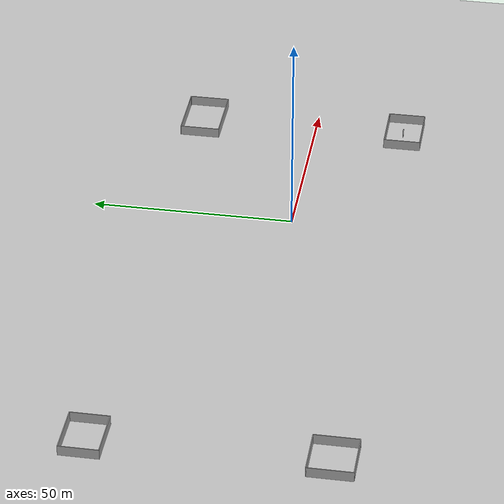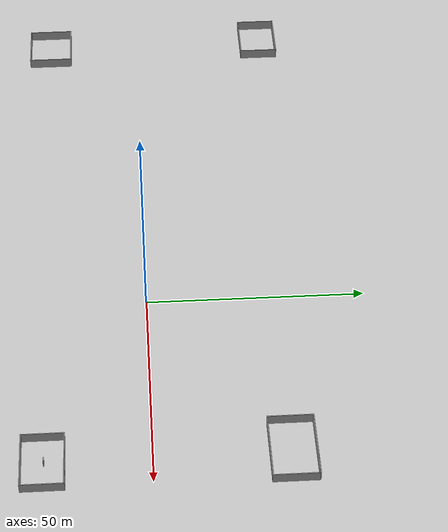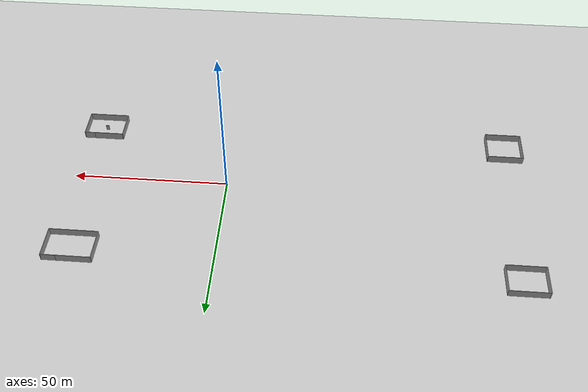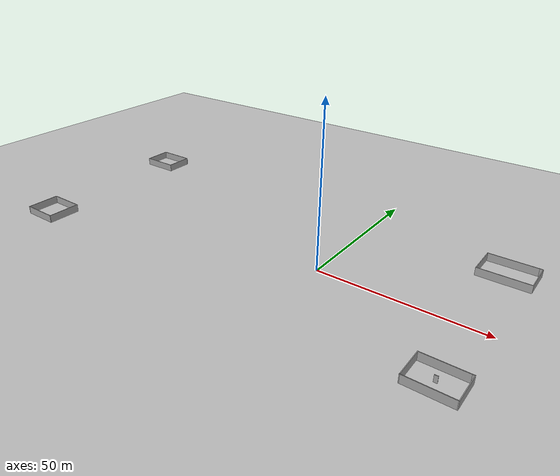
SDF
<sdf version="1.4">
 <world name="default">
  <light name="sun" type="directional">
   <pose>0 0 10 0 -0 0</pose>
   <diffuse>0.8 0.8 0.8 1</diffuse>
   <specular>0.2 0.2 0.2 1</specular>
   <attenuation>
    <range>1000</range>
    <constant>0.9</constant>
    <linear>0.01</linear>
    <quadratic>0.001</quadratic>
   </attenuation>
   <direction>-0.5 0.1 -0.9</direction>
  </light>
  <model name="ground_plane">
   <static>1</static>
   <link name="link">
    <collision name="collision">
     <geometry><plane><normal>0 0 1</normal><size>100 100</size></plane></geometry>
     <surface><friction><ode><mu>100</mu><mu2>50</mu2></ode></friction></surface>
    </collision>
    <visual name="visual">
     <cast_shadows>0</cast_shadows>
     <geometry><plane><normal>0 0 1</normal><size>100 100</size></plane></geometry>
     <material>
      <script><uri>file://media/materials/scripts/gazebo.material</uri><name>Gazebo/Grey</name></script>
     </material>
    </visual>
    <velocity_decay><linear>0</linear><angular>0</angular></velocity_decay>
   </link>
  </model>
  <physics type="ode">
   <max_step_size>0.001</max_step_size>
   <real_time_factor>1</real_time_factor>
   <real_time_update_rate>1000</real_time_update_rate>
   <gravity>0 0 -9.8</gravity>
  </physics>
  <scene><ambient>0.4 0.4 0.4 1</ambient><background>0.7 0.7 0.7 1</background><shadows>1</shadows></scene>
  <spherical_coordinates>
   <surface_model>EARTH_WGS84</surface_model>
   <latitude_deg>0</latitude_deg>
   <longitude_deg>0</longitude_deg>
   <elevation>0</elevation>
   <heading_deg>0</heading_deg>
  </spherical_coordinates>
  <model name="ofshore_1m">
   <link name="Door_0">
    <collision name="Door_0_Collision">
     <geometry><box><size>1 0.2 2</size></box></geometry>
     <pose>0 0 1 0 -0 0</pose>
    </collision>
    <visual name="Door_0_Visual">
     <pose>0 0 1 0 -0 0</pose>
     <geometry><box><size>1 0.2 2</size></box></geometry>
     <material>
      <script><uri>file://media/materials/scripts/gazebo.material</uri><name>Gazebo/Grey</name></script>
     </material>
    </visual>
    <velocity_decay><linear>0</linear><angular>0</angular></velocity_decay>
    <pose>44.41 -22.9157 0 0 -0 0</pose>
   </link>
   <link name="Wall_0">
    <collision name="Wall_0_Collision">
     <geometry><box><size>14.4318 0.2 2.5</size></box></geometry>
     <pose>0 0 1.25 0 -0 0</pose>
    </collision>
    <visual name="Wall_0_Visual">
     <pose>0 0 1.25 0 -0 0</pose>
     <geometry><box><size>14.4318 0.2 2.5</size></box></geometry>
     <material>
      <script><uri>file://media/materials/scripts/gazebo.material</uri><name>Gazebo/Grey</name></script>
     </material>
    </visual>
    <velocity_decay><linear>0</linear><angular>0</angular></velocity_decay>
    <pose>43.3461 34.7105 0 0 -0 3.14159</pose>
   </link>
   <link name="Wall_1">
    <collision name="Wall_1_Collision">
     <geometry><box><size>10.1622 0.2 2.5</size></box></geometry>
     <pose>0 0 1.25 0 -0 0</pose>
    </collision>
    <visual name="Wall_1_Visual">
     <pose>0 0 1.25 0 -0 0</pose>
     <geometry><box><size>10.1622 0.2 2.5</size></box></geometry>
     <material>
      <script><uri>file://media/materials/scripts/gazebo.material</uri><name>Gazebo/Grey</name></script>
     </material>
    </visual>
    <velocity_decay><linear>0</linear><angular>0</angular></velocity_decay>
    <pose>36.2302 29.7294 0 0 0 -1.5708</pose>
   </link>
   <link name="Wall_10">
    <collision name="Wall_10_Collision">
     <geometry><box><size>3.47331 0.2 2.5</size></box></geometry>
     <pose>0 0 1.25 0 -0 0</pose>
    </collision>
    <visual name="Wall_10_Visual">
     <pose>0 0 1.25 0 -0 0</pose>
     <geometry><box><size>3.47331 0.2 2.5</size></box></geometry>
     <material>
      <script><uri>file://media/materials/scripts/gazebo.material</uri><name>Gazebo/Grey</name></script>
     </material>
    </visual>
    <velocity_decay><linear>0</linear><angular>0</angular></velocity_decay>
    <pose>49.4738 -18.5359 0 0 -0 3.14159</pose>
   </link>
   <link name="Wall_12">
    <collision name="Wall_12_Collision">
     <geometry><box><size>12.297 0.2 2.5</size></box></geometry>
     <pose>0 0 1.25 0 -0 0</pose>
    </collision>
    <visual name="Wall_12_Visual">
     <pose>0 0 1.25 0 -0 0</pose>
     <geometry><box><size>12.297 0.2 2.5</size></box></geometry>
     <material>
      <script><uri>file://media/materials/scripts/gazebo.material</uri><name>Gazebo/Grey</name></script>
     </material>
    </visual>
    <velocity_decay><linear>0</linear><angular>0</angular></velocity_decay>
    <pose>-92.2746 37.2527 0 0 -0 3.14159</pose>
   </link>
   <link name="Wall_13">
    <collision name="Wall_13_Collision">
     <geometry><box><size>9.45065 0.2 2.5</size></box></geometry>
     <pose>0 0 1.25 0 -0 0</pose>
    </collision>
    <visual name="Wall_13_Visual">
     <pose>0 0 1.25 0 -0 0</pose>
     <geometry><box><size>9.45065 0.2 2.5</size></box></geometry>
     <material>
      <script><uri>file://media/materials/scripts/gazebo.material</uri><name>Gazebo/Grey</name></script>
     </material>
    </visual>
    <velocity_decay><linear>0</linear><angular>0</angular></velocity_decay>
    <pose>-98.3232 32.6274 0 0 0 -1.5708</pose>
   </link>
   <link name="Wall_14">
    <collision name="Wall_14_Collision">
     <geometry><box><size>12.297 0.2 2.5</size></box></geometry>
     <pose>0 0 1.25 0 -0 0</pose>
    </collision>
    <visual name="Wall_14_Visual">
     <pose>0 0 1.25 0 -0 0</pose>
     <geometry><box><size>12.297 0.2 2.5</size></box></geometry>
     <material>
      <script><uri>file://media/materials/scripts/gazebo.material</uri><name>Gazebo/Grey</name></script>
     </material>
    </visual>
    <velocity_decay><linear>0</linear><angular>0</angular></velocity_decay>
    <pose>-92.2746 28.002 0 0 -0 0</pose>
   </link>
   <link name="Wall_15">
    <collision name="Wall_15_Collision">
     <geometry><box><size>9.30833 0.2 2.5</size></box></geometry>
     <pose>0 0 1.25 0 -0 0</pose>
    </collision>
    <visual name="Wall_15_Visual">
     <pose>0 0 1.25 0 -0 0</pose>
     <geometry><box><size>9.30833 0.2 2.5</size></box></geometry>
     <material>
      <script><uri>file://media/materials/scripts/gazebo.material</uri><name>Gazebo/Grey</name></script>
     </material>
    </visual>
    <velocity_decay><linear>0</linear><angular>0</angular></velocity_decay>
    <pose>-86.2261 32.5562 0 0 -0 1.5708</pose>
   </link>
   <link name="Wall_17">
    <collision name="Wall_17_Collision">
     <geometry><box><size>11.5854 0.2 2.5</size></box></geometry>
     <pose>0 0 1.25 0 -0 0</pose>
    </collision>
    <visual name="Wall_17_Visual">
     <pose>0 0 1.25 0 -0 0</pose>
     <geometry><box><size>11.5854 0.2 2.5</size></box></geometry>
     <material>
      <script><uri>file://media/materials/scripts/gazebo.material</uri><name>Gazebo/Grey</name></script>
     </material>
    </visual>
    <velocity_decay><linear>0</linear><angular>0</angular></velocity_decay>
    <pose>-91.2073 -17.255 0 0 -0 3.14159</pose>
   </link>
   <link name="Wall_18">
    <collision name="Wall_18_Collision">
     <geometry><box><size>10.7315 0.2 2.5</size></box></geometry>
     <pose>0 0 1.25 0 -0 0</pose>
    </collision>
    <visual name="Wall_18_Visual">
     <pose>0 0 1.25 0 -0 0</pose>
     <geometry><box><size>10.7315 0.2 2.5</size></box></geometry>
     <material>
      <script><uri>file://media/materials/scripts/gazebo.material</uri><name>Gazebo/Grey</name></script>
     </material>
    </visual>
    <velocity_decay><linear>0</linear><angular>0</angular></velocity_decay>
    <pose>-96.9 -22.5208 0 0 0 -1.5708</pose>
   </link>
   <link name="Wall_19">
    <collision name="Wall_19_Collision">
     <geometry><box><size>11.7277 0.2 2.5</size></box></geometry>
     <pose>0 0 1.25 0 -0 0</pose>
    </collision>
    <visual name="Wall_19_Visual">
     <pose>0 0 1.25 0 -0 0</pose>
     <geometry><box><size>11.7277 0.2 2.5</size></box></geometry>
     <material>
      <script><uri>file://media/materials/scripts/gazebo.material</uri><name>Gazebo/Grey</name></script>
     </material>
    </visual>
    <velocity_decay><linear>0</linear><angular>0</angular></velocity_decay>
    <pose>-91.1361 -27.7865 0 0 -0 0</pose>
   </link>
   <link name="Wall_2">
    <collision name="Wall_2_Collision">
     <geometry><box><size>15.428 0.2 2.5</size></box></geometry>
     <pose>0 0 1.25 0 -0 0</pose>
    </collision>
    <visual name="Wall_2_Visual">
     <pose>0 0 1.25 0 -0 0</pose>
     <geometry><box><size>15.428 0.2 2.5</size></box></geometry>
     <material>
      <script><uri>file://media/materials/scripts/gazebo.material</uri><name>Gazebo/Grey</name></script>
     </material>
    </visual>
    <velocity_decay><linear>0</linear><angular>0</angular></velocity_decay>
    <pose>43.8442 24.7482 0 0 -0 0</pose>
   </link>
   <link name="Wall_20">
    <collision name="Wall_20_Collision">
     <geometry><box><size>10.7315 0.2 2.5</size></box></geometry>
     <pose>0 0 1.25 0 -0 0</pose>
    </collision>
    <visual name="Wall_20_Visual">
     <pose>0 0 1.25 0 -0 0</pose>
     <geometry><box><size>10.7315 0.2 2.5</size></box></geometry>
     <material>
      <script><uri>file://media/materials/scripts/gazebo.material</uri><name>Gazebo/Grey</name></script>
     </material>
    </visual>
    <velocity_decay><linear>0</linear><angular>0</angular></velocity_decay>
    <pose>-85.3722 -22.5208 0 0 -0 1.5708</pose>
   </link>
   <link name="Wall_3">
    <collision name="Wall_3_Collision">
     <geometry><box><size>10.1622 0.2 2.5</size></box></geometry>
     <pose>0 0 1.25 0 -0 0</pose>
    </collision>
    <visual name="Wall_3_Visual">
     <pose>0 0 1.25 0 -0 0</pose>
     <geometry><box><size>10.1622 0.2 2.5</size></box></geometry>
     <material>
      <script><uri>file://media/materials/scripts/gazebo.material</uri><name>Gazebo/Grey</name></script>
     </material>
    </visual>
    <velocity_decay><linear>0</linear><angular>0</angular></velocity_decay>
    <pose>51.4582 29.7294 0 0 -0 1.5708</pose>
   </link>
   <link name="Wall_4">
    <collision name="Wall_4_Collision">
     <geometry><box><size>4.61185 0.2 2.5</size></box></geometry>
     <pose>0 0 1.25 0 -0 0</pose>
    </collision>
    <visual name="Wall_4_Visual">
     <pose>0 0 1.25 0 -0 0</pose>
     <geometry><box><size>4.61185 0.2 2.5</size></box></geometry>
     <material>
      <script><uri>file://media/materials/scripts/gazebo.material</uri><name>Gazebo/Grey</name></script>
     </material>
    </visual>
    <velocity_decay><linear>0</linear><angular>0</angular></velocity_decay>
    <pose>49.2523 34.7105 0 0 -0 3.14159</pose>
   </link>
   <link name="Wall_6">
    <collision name="Wall_6_Collision">
     <geometry><box><size>12.4393 0.2 2.5</size></box></geometry>
     <pose>0 0 1.25 0 -0 0</pose>
    </collision>
    <visual name="Wall_6_Visual">
     <pose>0 0 1.25 0 -0 0</pose>
     <geometry><box><size>12.4393 0.2 2.5</size></box></geometry>
     <material>
      <script><uri>file://media/materials/scripts/gazebo.material</uri><name>Gazebo/Grey</name></script>
     </material>
    </visual>
    <velocity_decay><linear>0</linear><angular>0</angular></velocity_decay>
    <pose>44.2792 -18.5359 0 0 -0 3.14159</pose>
   </link>
   <link name="Wall_7">
    <collision name="Wall_7_Collision">
     <geometry><box><size>9.45065 0.2 2.5</size></box></geometry>
     <pose>0 0 1.25 0 -0 0</pose>
    </collision>
    <visual name="Wall_7_Visual">
     <pose>0 0 1.25 0 -0 0</pose>
     <geometry><box><size>9.45065 0.2 2.5</size></box></geometry>
     <material>
      <script><uri>file://media/materials/scripts/gazebo.material</uri><name>Gazebo/Grey</name></script>
     </material>
    </visual>
    <velocity_decay><linear>0</linear><angular>0</angular></velocity_decay>
    <pose>38.1595 -23.1612 0 0 0 -1.5708</pose>
   </link>
   <link name="Wall_8">
    <collision name="Wall_8_Collision">
     <geometry><box><size>13.1509 0.2 2.5</size></box></geometry>
     <pose>0 0 1.25 0 -0 0</pose>
    </collision>
    <visual name="Wall_8_Visual">
     <pose>0 0 1.25 0 -0 0</pose>
     <geometry><box><size>13.1509 0.2 2.5</size></box></geometry>
     <material>
      <script><uri>file://media/materials/scripts/gazebo.material</uri><name>Gazebo/Grey</name></script>
     </material>
    </visual>
    <velocity_decay><linear>0</linear><angular>0</angular></velocity_decay>
    <pose>44.635 -27.7865 0 0 -0 0</pose>
   </link>
   <link name="Wall_9">
    <collision name="Wall_9_Collision">
     <geometry><box><size>9.45065 0.2 2.5</size></box></geometry>
     <pose>0 0 1.25 0 -0 0</pose>
    </collision>
    <visual name="Wall_9_Visual">
     <pose>0 0 1.25 0 -0 0</pose>
     <geometry><box><size>9.45065 0.2 2.5</size></box></geometry>
     <material>
      <script><uri>file://media/materials/scripts/gazebo.material</uri><name>Gazebo/Grey</name></script>
     </material>
    </visual>
    <velocity_decay><linear>0</linear><angular>0</angular></velocity_decay>
    <pose>51.1105 -23.1612 0 0 -0 1.5708</pose>
   </link>
   <static>1</static>
  </model>
 </world>
</sdf>
